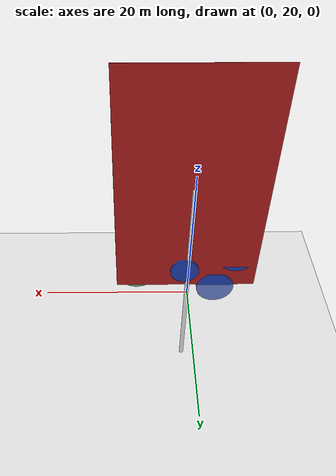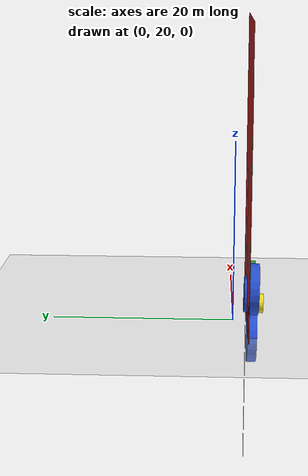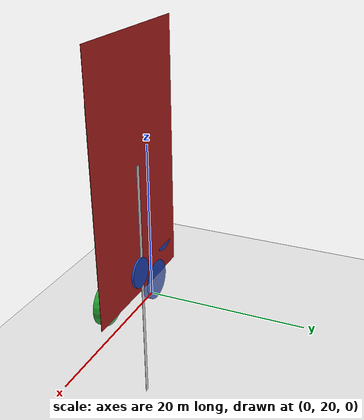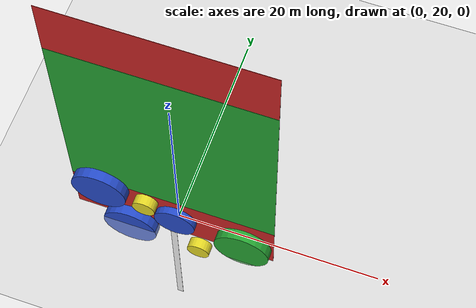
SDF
<sdf version="1.7">
 <world name="default">
  <light name="sun" type="directional">
   <cast_shadows>0</cast_shadows>
   <pose>0 0 10 0 -0 0</pose>
   <diffuse>0.8 0.8 0.8 1</diffuse>
   <specular>0.2 0.2 0.2 1</specular>
   <attenuation>
    <range>1000</range>
    <constant>0.9</constant>
    <linear>0.01</linear>
    <quadratic>0.001</quadratic>
   </attenuation>
   <direction>-0.5 0.1 -0.9</direction>
   <spot><inner_angle>0</inner_angle><outer_angle>0</outer_angle><falloff>0</falloff></spot>
  </light>
  <model name="ground_plane">
   <static>1</static>
   <link name="link">
    <collision name="collision">
     <geometry><plane><normal>0 0 1</normal><size>100 100</size></plane></geometry>
     <surface>
      <contact><collide_bitmask>65535</collide_bitmask></contact>
      <friction><ode><mu>100</mu><mu2>50</mu2></ode></friction>
     </surface>
    </collision>
    <visual name="visual">
     <cast_shadows>0</cast_shadows>
     <geometry><plane><normal>0 0 1</normal><size>100 100</size></plane></geometry>
     <material>
      <script><uri>file://media/materials/scripts/gazebo.material</uri><name>Gazebo/Grey</name></script>
     </material>
    </visual>
   </link>
  </model>
  <gravity>0 0 -9.8</gravity>
  <magnetic_field>6e-06 2.3e-05 -4.2e-05</magnetic_field>
  <atmosphere type="adiabatic"/>
  <physics type="ode">
   <max_step_size>0.001</max_step_size>
   <real_time_factor>1</real_time_factor>
   <real_time_update_rate>1000</real_time_update_rate>
  </physics>
  <scene><ambient>0.4 0.4 0.4 1</ambient><background>0.7 0.7 0.7 1</background><shadows>0</shadows></scene>
  <spherical_coordinates>
   <surface_model>EARTH_WGS84</surface_model>
   <latitude_deg>0</latitude_deg>
   <longitude_deg>0</longitude_deg>
   <elevation>0</elevation>
   <heading_deg>0</heading_deg>
  </spherical_coordinates>
  <light name="user_directional_light_0" type="directional">
   <pose>-0.169991 0.23952 1 0 -0 0</pose>
   <diffuse>0.5 0.5 0.5 1</diffuse>
   <specular>0.1 0.1 0.1 1</specular>
   <direction>0.1 0.1 -0.9</direction>
   <attenuation>
    <range>20</range>
    <constant>0.5</constant>
    <linear>0.01</linear>
    <quadratic>0.001</quadratic>
   </attenuation>
   <spot><inner_angle>0</inner_angle><outer_angle>0</outer_angle><falloff>0</falloff></spot>
  </light>
  <model name="Untitled23">
   <link name="link_2">
    <inertial>
     <mass>20.383</mass>
     <inertia><ixx>1883.11</ixx><ixy>0</ixy><ixz>0</ixz><iyy>2554.49</iyy><iyz>0</iyz><izz>671.385</izz></inertia>
    </inertial>
    <visual name="visual">
     <geometry><box><size>0.636272 0.030727 33.2961</size></box></geometry>
     <material>
      <lighting>1</lighting>
      <script><uri>file://media/materials/scripts/gazebo.material</uri><name>Gazebo/White</name></script>
      <shader type="pixel"><normal_map>__default__</normal_map></shader>
      <ambient>1 1 1 1</ambient>
      <diffuse>1 1 1 1</diffuse>
      <specular>1 1 1 1</specular>
      <emissive>1 1 1 1</emissive>
     </material>
     <cast_shadows>0</cast_shadows>
    </visual>
    <collision name="collision">
     <geometry><box><size>0.636272 0.030727 33.2961</size></box></geometry>
     <surface>
      <friction>
       <ode><mu>1</mu><mu2>1</mu2><fdir1>0 0 0</fdir1><slip1>0</slip1><slip2>0</slip2></ode>
       <torsional>
        <coefficient>1</coefficient>
        <patch_radius>0</patch_radius>
        <surface_radius>0</surface_radius>
        <use_patch_radius>1</use_patch_radius>
        <ode><slip>0</slip></ode>
       </torsional>
      </friction>
      <bounce><restitution_coefficient>0</restitution_coefficient><threshold>1e+06</threshold></bounce>
      <contact>
       <collide_without_contact>0</collide_without_contact>
       <collide_without_contact_bitmask>1</collide_without_contact_bitmask>
       <collide_bitmask>1</collide_bitmask>
       <ode>
        <soft_cfm>0</soft_cfm>
        <soft_erp>0.2</soft_erp>
        <kp>1e+13</kp>
        <kd>1</kd>
        <max_vel>0.01</max_vel>
        <min_depth>0</min_depth>
       </ode>
       <bullet>
        <split_impulse>1</split_impulse>
        <split_impulse_penetration_threshold>-0.01</split_impulse_penetration_threshold>
        <soft_cfm>0</soft_cfm>
        <soft_erp>0.2</soft_erp>
        <kp>1e+13</kp>
        <kd>1</kd>
       </bullet>
      </contact>
     </surface>
    </collision>
   </link>
   <static>1</static>
   <pose>-0.103476 18.6248 0.5 0 -0 0</pose>
  </model>
  <model name="Untitled21_clone111">
   <link name="link_2">
    <inertial>
     <mass>20.383</mass>
     <inertia><ixx>1883.11</ixx><ixy>0</ixy><ixz>0</ixz><iyy>2554.49</iyy><iyz>0</iyz><izz>671.385</izz></inertia>
    </inertial>
    <visual name="visual">
     <geometry><box><size>19.8811 0.030727 21.4217</size></box></geometry>
     <material>
      <lighting>1</lighting>
      <script><uri>file://media/materials/scripts/gazebo.material</uri><name>Gazebo/Green</name></script>
      <shader type="pixel"><normal_map>__default__</normal_map></shader>
      <ambient>1 1 0.5 1</ambient>
      <diffuse>1 0 1 1</diffuse>
      <specular>0 0 0 1</specular>
      <emissive>0 0 0 1</emissive>
     </material>
     <cast_shadows>0</cast_shadows>
    </visual>
    <collision name="collision">
     <geometry><box><size>19.8811 0.030727 21.4217</size></box></geometry>
     <surface>
      <friction>
       <ode><mu>1</mu><mu2>1</mu2><fdir1>0 0 0</fdir1><slip1>0</slip1><slip2>0</slip2></ode>
       <torsional>
        <coefficient>1</coefficient>
        <patch_radius>0</patch_radius>
        <surface_radius>0</surface_radius>
        <use_patch_radius>1</use_patch_radius>
        <ode><slip>0</slip></ode>
       </torsional>
      </friction>
      <bounce><restitution_coefficient>0</restitution_coefficient><threshold>1e+06</threshold></bounce>
      <contact>
       <collide_without_contact>0</collide_without_contact>
       <collide_without_contact_bitmask>1</collide_without_contact_bitmask>
       <collide_bitmask>1</collide_bitmask>
       <ode>
        <soft_cfm>0</soft_cfm>
        <soft_erp>0.2</soft_erp>
        <kp>1e+13</kp>
        <kd>1</kd>
        <max_vel>0.01</max_vel>
        <min_depth>0</min_depth>
       </ode>
       <bullet>
        <split_impulse>1</split_impulse>
        <split_impulse_penetration_threshold>-0.01</split_impulse_penetration_threshold>
        <soft_cfm>0</soft_cfm>
        <soft_erp>0.2</soft_erp>
        <kp>1e+13</kp>
        <kd>1</kd>
       </bullet>
      </contact>
     </surface>
    </collision>
   </link>
   <static>1</static>
   <pose>0.148085 18.46 16.648 4.8e-05 -0 0</pose>
  </model>
  <model name="Untitled2111">
   <link name="link_2">
    <inertial>
     <mass>20.383</mass>
     <inertia><ixx>1883.11</ixx><ixy>0</ixy><ixz>0</ixz><iyy>2554.49</iyy><iyz>0</iyz><izz>671.385</izz></inertia>
    </inertial>
    <visual name="visual">
     <geometry><box><size>19.8811 0.030727 33.2961</size></box></geometry>
     <material>
      <lighting>1</lighting>
      <script><uri>file://media/materials/scripts/gazebo.material</uri><name>Gazebo/Red</name></script>
      <shader type="pixel"><normal_map>__default__</normal_map></shader>
      <ambient>1 0 0 1</ambient>
      <diffuse>1 1 1 1</diffuse>
      <specular>0 0 0 1</specular>
      <emissive>0 0 0 1</emissive>
     </material>
     <cast_shadows>0</cast_shadows>
    </visual>
    <collision name="collision">
     <geometry><box><size>19.8811 0.030727 33.2961</size></box></geometry>
     <surface>
      <friction>
       <ode><mu>1</mu><mu2>1</mu2><fdir1>0 0 0</fdir1><slip1>0</slip1><slip2>0</slip2></ode>
       <torsional>
        <coefficient>1</coefficient>
        <patch_radius>0</patch_radius>
        <surface_radius>0</surface_radius>
        <use_patch_radius>1</use_patch_radius>
        <ode><slip>0</slip></ode>
       </torsional>
      </friction>
      <bounce><restitution_coefficient>0</restitution_coefficient><threshold>1e+06</threshold></bounce>
      <contact>
       <collide_without_contact>0</collide_without_contact>
       <collide_without_contact_bitmask>1</collide_without_contact_bitmask>
       <collide_bitmask>1</collide_bitmask>
       <ode>
        <soft_cfm>0</soft_cfm>
        <soft_erp>0.2</soft_erp>
        <kp>1e+13</kp>
        <kd>1</kd>
        <max_vel>0.01</max_vel>
        <min_depth>0</min_depth>
       </ode>
       <bullet>
        <split_impulse>1</split_impulse>
        <split_impulse_penetration_threshold>-0.01</split_impulse_penetration_threshold>
        <soft_cfm>0</soft_cfm>
        <soft_erp>0.2</soft_erp>
        <kp>1e+13</kp>
        <kd>1</kd>
       </bullet>
      </contact>
     </surface>
    </collision>
   </link>
   <static>1</static>
   <pose>0.138806 18.4858 16.648 4.8e-05 -0 0</pose>
  </model>
  <model name="unit_cylinder11">
   <link name="link">
    <inertial>
     <mass>1</mass>
     <inertia><ixx>0.145833</ixx><ixy>0</ixy><ixz>0</ixz><iyy>0.145833</iyy><iyz>0</iyz><izz>0.125</izz></inertia>
    </inertial>
    <visual name="visual">
     <geometry><cylinder><radius>2.71021</radius><length>1</length></cylinder></geometry>
     <material>
      <script><name>Gazebo/Blue</name><uri>file://media/materials/scripts/gazebo.material</uri></script>
      <shader type="pixel"><normal_map>__default__</normal_map></shader>
      <ambient>0 0 1 0</ambient>
      <diffuse>0 0 1 0</diffuse>
      <specular>0 0 1 1</specular>
      <emissive>0 0 0 1</emissive>
     </material>
     <cast_shadows>0</cast_shadows>
    </visual>
    <collision name="collision">
     <geometry><cylinder><radius>2.71021</radius><length>1</length></cylinder></geometry>
     <surface>
      <friction>
       <ode><mu>1</mu><mu2>1</mu2><fdir1>0 0 0</fdir1><slip1>0</slip1><slip2>0</slip2></ode>
       <torsional>
        <coefficient>1</coefficient>
        <patch_radius>0</patch_radius>
        <surface_radius>0</surface_radius>
        <use_patch_radius>1</use_patch_radius>
        <ode><slip>0</slip></ode>
       </torsional>
      </friction>
      <bounce><restitution_coefficient>0</restitution_coefficient><threshold>1e+06</threshold></bounce>
      <contact>
       <collide_without_contact>0</collide_without_contact>
       <collide_without_contact_bitmask>1</collide_without_contact_bitmask>
       <collide_bitmask>1</collide_bitmask>
       <ode>
        <soft_cfm>0</soft_cfm>
        <soft_erp>0.2</soft_erp>
        <kp>1e+13</kp>
        <kd>1</kd>
        <max_vel>0.01</max_vel>
        <min_depth>0</min_depth>
       </ode>
       <bullet>
        <split_impulse>1</split_impulse>
        <split_impulse_penetration_threshold>-0.01</split_impulse_penetration_threshold>
        <soft_cfm>0</soft_cfm>
        <soft_erp>0.2</soft_erp>
        <kp>1e+13</kp>
        <kd>1</kd>
       </bullet>
      </contact>
     </surface>
    </collision>
   </link>
   <static>1</static>
   <pose>-4.22265 18.0513 -0.602797 1.58994 -0 0</pose>
  </model>
  <model name="unit_cylinder11_clone11">
   <link name="link">
    <inertial>
     <mass>1</mass>
     <inertia><ixx>0.145833</ixx><ixy>0</ixy><ixz>0</ixz><iyy>0.145833</iyy><iyz>0</iyz><izz>0.125</izz></inertia>
    </inertial>
    <visual name="visual">
     <geometry><cylinder><radius>2.71023</radius><length>1</length></cylinder></geometry>
     <material>
      <script><name>Gazebo/Green</name><uri>file://media/materials/scripts/gazebo.material</uri></script>
      <shader type="pixel"><normal_map>__default__</normal_map></shader>
      <ambient>0 1 0 0</ambient>
      <diffuse>0 1 0 0</diffuse>
      <specular>0 1 0 1</specular>
      <emissive>0 1 0 1</emissive>
     </material>
     <cast_shadows>0</cast_shadows>
    </visual>
    <collision name="collision">
     <geometry><cylinder><radius>2.71023</radius><length>1</length></cylinder></geometry>
     <surface>
      <friction>
       <ode><mu>1</mu><mu2>1</mu2><fdir1>0 0 0</fdir1><slip1>0</slip1><slip2>0</slip2></ode>
       <torsional>
        <coefficient>1</coefficient>
        <patch_radius>0</patch_radius>
        <surface_radius>0</surface_radius>
        <use_patch_radius>1</use_patch_radius>
        <ode><slip>0</slip></ode>
       </torsional>
      </friction>
      <bounce><restitution_coefficient>0</restitution_coefficient><threshold>1e+06</threshold></bounce>
      <contact>
       <collide_without_contact>0</collide_without_contact>
       <collide_without_contact_bitmask>1</collide_without_contact_bitmask>
       <collide_bitmask>1</collide_bitmask>
       <ode>
        <soft_cfm>0</soft_cfm>
        <soft_erp>0.2</soft_erp>
        <kp>1e+13</kp>
        <kd>1</kd>
        <max_vel>0.01</max_vel>
        <min_depth>0</min_depth>
       </ode>
       <bullet>
        <split_impulse>1</split_impulse>
        <split_impulse_penetration_threshold>-0.01</split_impulse_penetration_threshold>
        <soft_cfm>0</soft_cfm>
        <soft_erp>0.2</soft_erp>
        <kp>1e+13</kp>
        <kd>1</kd>
       </bullet>
      </contact>
     </surface>
    </collision>
   </link>
   <static>1</static>
   <pose>7.20062 17.9113 2.24656 1.58994 -0 0</pose>
  </model>
  <model name="unit_cylinder11_clone">
   <link name="link">
    <inertial>
     <mass>1</mass>
     <inertia><ixx>0.145833</ixx><ixy>0</ixy><ixz>0</ixz><iyy>0.145833</iyy><iyz>0</iyz><izz>0.125</izz></inertia>
    </inertial>
    <visual name="visual">
     <geometry><cylinder><radius>1.12057</radius><length>1</length></cylinder></geometry>
     <material>
      <script><name>Gazebo/Yellow</name><uri>file://media/materials/scripts/gazebo.material</uri></script>
      <shader type="pixel"><normal_map>__default__</normal_map></shader>
      <ambient>1 1 0 0</ambient>
      <diffuse>1 1 0 0</diffuse>
      <specular>1 1 1 1</specular>
      <emissive>1 1 0 1</emissive>
     </material>
     <cast_shadows>0</cast_shadows>
    </visual>
    <collision name="collision">
     <geometry><cylinder><radius>1.12057</radius><length>1</length></cylinder></geometry>
     <surface>
      <friction>
       <ode><mu>1</mu><mu2>1</mu2><fdir1>0 0 0</fdir1><slip1>0</slip1><slip2>0</slip2></ode>
       <torsional>
        <coefficient>1</coefficient>
        <patch_radius>0</patch_radius>
        <surface_radius>0</surface_radius>
        <use_patch_radius>1</use_patch_radius>
        <ode><slip>0</slip></ode>
       </torsional>
      </friction>
      <bounce><restitution_coefficient>0</restitution_coefficient><threshold>1e+06</threshold></bounce>
      <contact>
       <collide_without_contact>0</collide_without_contact>
       <collide_without_contact_bitmask>1</collide_without_contact_bitmask>
       <collide_bitmask>1</collide_bitmask>
       <ode>
        <soft_cfm>0</soft_cfm>
        <soft_erp>0.2</soft_erp>
        <kp>1e+13</kp>
        <kd>1</kd>
        <max_vel>0.01</max_vel>
        <min_depth>0</min_depth>
       </ode>
       <bullet>
        <split_impulse>1</split_impulse>
        <split_impulse_penetration_threshold>-0.01</split_impulse_penetration_threshold>
        <soft_cfm>0</soft_cfm>
        <soft_erp>0.2</soft_erp>
        <kp>1e+13</kp>
        <kd>1</kd>
       </bullet>
      </contact>
     </surface>
    </collision>
   </link>
   <static>1</static>
   <pose>-2.33912 17.7824 5.1157 1.58994 -0 0</pose>
  </model>
  <model name="unit_cylinder11_clone_0">
   <link name="link">
    <inertial>
     <mass>1</mass>
     <inertia><ixx>0.145833</ixx><ixy>0</ixy><ixz>0</ixz><iyy>0.145833</iyy><iyz>0</iyz><izz>0.125</izz></inertia>
    </inertial>
    <visual name="visual">
     <geometry><cylinder><radius>2.71022</radius><length>1</length></cylinder></geometry>
     <material>
      <script><name>Gazebo/Blue</name><uri>file://media/materials/scripts/gazebo.material</uri></script>
      <shader type="pixel"><normal_map>__default__</normal_map></shader>
      <ambient>1 0 1 0</ambient>
      <diffuse>1 0 1 0</diffuse>
      <specular>1 0 1 1</specular>
      <emissive>0 0 0 1</emissive>
     </material>
     <cast_shadows>0</cast_shadows>
    </visual>
    <collision name="collision">
     <geometry><cylinder><radius>2.71022</radius><length>1</length></cylinder></geometry>
     <surface>
      <friction>
       <ode><mu>1</mu><mu2>1</mu2><fdir1>0 0 0</fdir1><slip1>0</slip1><slip2>0</slip2></ode>
       <torsional>
        <coefficient>1</coefficient>
        <patch_radius>0</patch_radius>
        <surface_radius>0</surface_radius>
        <use_patch_radius>1</use_patch_radius>
        <ode><slip>0</slip></ode>
       </torsional>
      </friction>
      <bounce><restitution_coefficient>0</restitution_coefficient><threshold>1e+06</threshold></bounce>
      <contact>
       <collide_without_contact>0</collide_without_contact>
       <collide_without_contact_bitmask>1</collide_without_contact_bitmask>
       <collide_bitmask>1</collide_bitmask>
       <ode>
        <soft_cfm>0</soft_cfm>
        <soft_erp>0.2</soft_erp>
        <kp>1e+13</kp>
        <kd>1</kd>
        <max_vel>0.01</max_vel>
        <min_depth>0</min_depth>
       </ode>
       <bullet>
        <split_impulse>1</split_impulse>
        <split_impulse_penetration_threshold>-0.01</split_impulse_penetration_threshold>
        <soft_cfm>0</soft_cfm>
        <soft_erp>0.2</soft_erp>
        <kp>1e+13</kp>
        <kd>1</kd>
       </bullet>
      </contact>
     </surface>
    </collision>
   </link>
   <static>1</static>
   <pose>-6.87841 17.9638 5.39021 1.58994 -0 0</pose>
  </model>
  <model name="unit_cylinder11_clone_clone">
   <link name="link">
    <inertial>
     <mass>1</mass>
     <inertia><ixx>0.145833</ixx><ixy>0</ixy><ixz>0</ixz><iyy>0.145833</iyy><iyz>0</iyz><izz>0.125</izz></inertia>
    </inertial>
    <visual name="visual">
     <geometry><cylinder><radius>2.01875</radius><length>1</length></cylinder></geometry>
     <material>
      <script><name>Gazebo/Blue</name><uri>file://media/materials/scripts/gazebo.material</uri></script>
      <shader type="pixel"><normal_map>__default__</normal_map></shader>
      <ambient>0.447 0.624 0.812 1</ambient>
      <diffuse>0.447 0.624 0.812 1</diffuse>
      <specular>0.447 0.624 0.812 1</specular>
      <emissive>0.447 0.624 0.812 1</emissive>
     </material>
     <cast_shadows>0</cast_shadows>
    </visual>
    <collision name="collision">
     <geometry><cylinder><radius>2.01875</radius><length>1</length></cylinder></geometry>
     <surface>
      <friction>
       <ode><mu>1</mu><mu2>1</mu2><fdir1>0 0 0</fdir1><slip1>0</slip1><slip2>0</slip2></ode>
       <torsional>
        <coefficient>1</coefficient>
        <patch_radius>0</patch_radius>
        <surface_radius>0</surface_radius>
        <use_patch_radius>1</use_patch_radius>
        <ode><slip>0</slip></ode>
       </torsional>
      </friction>
      <bounce><restitution_coefficient>0</restitution_coefficient><threshold>1e+06</threshold></bounce>
      <contact>
       <collide_without_contact>0</collide_without_contact>
       <collide_without_contact_bitmask>1</collide_without_contact_bitmask>
       <collide_bitmask>1</collide_bitmask>
       <ode>
        <soft_cfm>0</soft_cfm>
        <soft_erp>0.2</soft_erp>
        <kp>1e+13</kp>
        <kd>1</kd>
        <max_vel>0.01</max_vel>
        <min_depth>0</min_depth>
       </ode>
       <bullet>
        <split_impulse>1</split_impulse>
        <split_impulse_penetration_threshold>-0.01</split_impulse_penetration_threshold>
        <soft_cfm>0</soft_cfm>
        <soft_erp>0.2</soft_erp>
        <kp>1e+13</kp>
        <kd>1</kd>
       </bullet>
      </contact>
     </surface>
    </collision>
   </link>
   <static>1</static>
   <pose>0.416306 18.2911 2.88908 1.58994 -0 0</pose>
  </model>
  <model name="unit_cylinder11_clone_clone_0">
   <link name="link">
    <inertial>
     <mass>1</mass>
     <inertia><ixx>0.145833</ixx><ixy>0</ixy><ixz>0</ixz><iyy>0.145833</iyy><iyz>0</iyz><izz>0.125</izz></inertia>
    </inertial>
    <visual name="visual">
     <geometry><cylinder><radius>1.09883</radius><length>1</length></cylinder></geometry>
     <material>
      <script><name>Gazebo/Yellow</name><uri>file://media/materials/scripts/gazebo.material</uri></script>
      <shader type="pixel"><normal_map>__default__</normal_map></shader>
      <ambient>0.953 0.953 0.953 1</ambient>
      <diffuse>1 0 0.506 1</diffuse>
      <specular>1 0 0.506 1</specular>
      <emissive>1 0 0.506 1</emissive>
     </material>
     <cast_shadows>0</cast_shadows>
    </visual>
    <collision name="collision">
     <geometry><cylinder><radius>1.09883</radius><length>1</length></cylinder></geometry>
     <surface>
      <friction>
       <ode><mu>1</mu><mu2>1</mu2><fdir1>0 0 0</fdir1><slip1>0</slip1><slip2>0</slip2></ode>
       <torsional>
        <coefficient>1</coefficient>
        <patch_radius>0</patch_radius>
        <surface_radius>0</surface_radius>
        <use_patch_radius>1</use_patch_radius>
        <ode><slip>0</slip></ode>
       </torsional>
      </friction>
      <bounce><restitution_coefficient>0</restitution_coefficient><threshold>1e+06</threshold></bounce>
      <contact>
       <collide_without_contact>0</collide_without_contact>
       <collide_without_contact_bitmask>1</collide_without_contact_bitmask>
       <collide_bitmask>1</collide_bitmask>
       <ode>
        <soft_cfm>0</soft_cfm>
        <soft_erp>0.2</soft_erp>
        <kp>1e+13</kp>
        <kd>1</kd>
        <max_vel>0.01</max_vel>
        <min_depth>0</min_depth>
       </ode>
       <bullet>
        <split_impulse>1</split_impulse>
        <split_impulse_penetration_threshold>-0.01</split_impulse_penetration_threshold>
        <soft_cfm>0</soft_cfm>
        <soft_erp>0.2</soft_erp>
        <kp>1e+13</kp>
        <kd>1</kd>
       </bullet>
      </contact>
     </surface>
    </collision>
   </link>
   <static>1</static>
   <pose>3.19076 17.0618 1.07134 1.58994 -0 0</pose>
  </model>
 </world>
</sdf>
